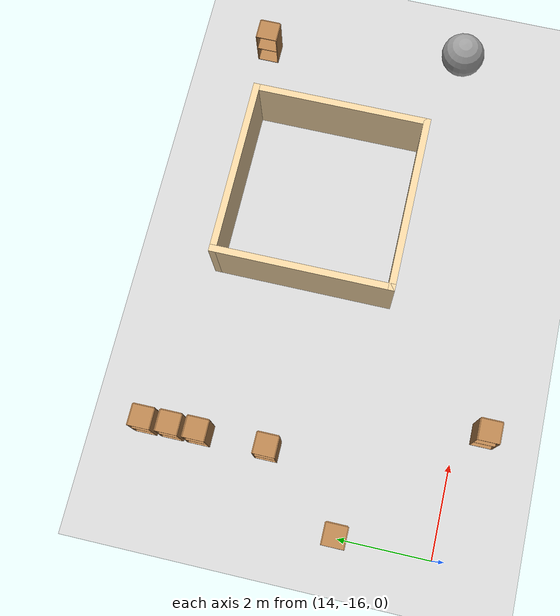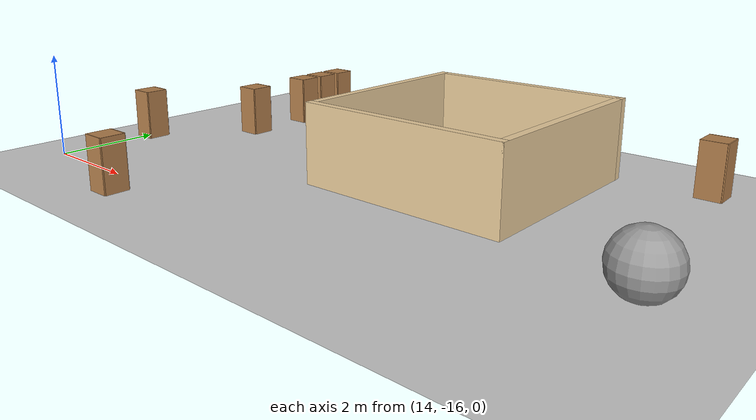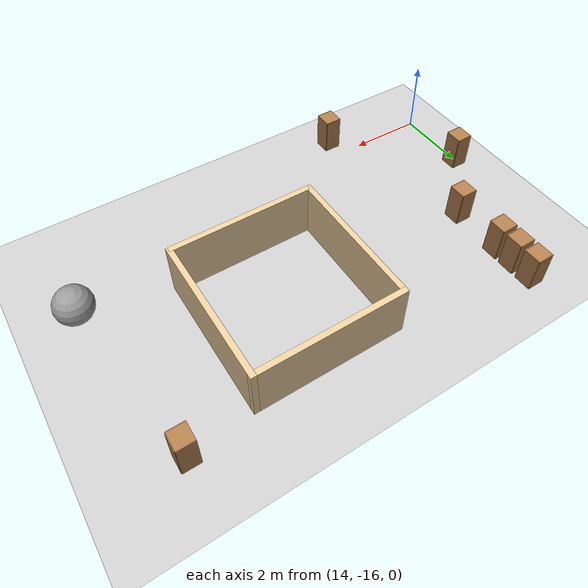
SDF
<sdf version="1.6">
 <world name="default">
  <model name="ground_plane">
   <static>1</static>
   <link name="link">
    <collision name="collision">
     <geometry><plane><normal>0 0 1</normal><size>105 105</size></plane></geometry>
     <surface>
      <contact><collide_bitmask>65535</collide_bitmask></contact>
      <friction><ode><mu>100</mu><mu2>50</mu2></ode></friction>
     </surface>
    </collision>
    <visual name="visual">
     <cast_shadows>0</cast_shadows>
     <geometry><plane><normal>0 0 1</normal><size>105 105</size></plane></geometry>
     <material>
      <script><uri>file://media/materials/scripts/gazebo.material</uri><name>Gazebo/Grey</name></script>
     </material>
    </visual>
   </link>
  </model>
  <model name="cabinet">
   <static>1</static>
   <link name="cabinet_bottom_plate">
    <inertial>
     <pose>0 0 -1 0 -0 0</pose>
     <inertia><ixx>2.05</ixx><ixy>0</ixy><ixz>0</ixz><iyy>2.05</iyy><iyz>0</iyz><izz>2.05</izz></inertia>
     <mass>25</mass>
    </inertial>
    <collision name="cabinet_bottom_plate_geom">
     <pose>0 0 0.01 0 -0 0</pose>
     <geometry><box><size>0.45 0.45 0.02</size></box></geometry>
    </collision>
    <visual name="cabinet_bottom_plate_geom_visual">
     <pose>0 0 0.01 0 -0 0</pose>
     <geometry><box><size>0.45 0.45 0.02</size></box></geometry>
     <material>
      <script><uri>file://media/materials/scripts/gazebo.material</uri><name>Gazebo/Wood</name></script>
     </material>
    </visual>
    <collision name="cabinet_bottom_plate_geom_cabinet_back_plate">
     <pose>0.235 0 0.51 0 -0 0</pose>
     <geometry><box><size>0.02 0.45 1.02</size></box></geometry>
    </collision>
    <visual name="cabinet_bottom_plate_geom_cabinet_back_plate_visual">
     <pose>0.235 0 0.51 0 -0 0</pose>
     <geometry><box><size>0.02 0.45 1.02</size></box></geometry>
     <material>
      <script><uri>file://media/materials/scripts/gazebo.material</uri><name>Gazebo/Wood</name></script>
     </material>
    </visual>
    <collision name="cabinet_bottom_plate_geom_cabinet_left_plate">
     <pose>0 0.235 0.51 0 -0 0</pose>
     <geometry><box><size>0.45 0.02 1.02</size></box></geometry>
    </collision>
    <visual name="cabinet_bottom_plate_geom_cabinet_left_plate_visual">
     <pose>0 0.235 0.51 0 -0 0</pose>
     <geometry><box><size>0.45 0.02 1.02</size></box></geometry>
     <material>
      <script><uri>file://media/materials/scripts/gazebo.material</uri><name>Gazebo/Wood</name></script>
     </material>
    </visual>
    <collision name="cabinet_bottom_plate_geom_cabinet_middle_plate">
     <pose>0 0 0.51 0 -0 0</pose>
     <geometry><box><size>0.45 0.45 0.02</size></box></geometry>
    </collision>
    <visual name="cabinet_bottom_plate_geom_cabinet_middle_plate_visual">
     <pose>0 0 0.51 0 -0 0</pose>
     <geometry><box><size>0.45 0.45 0.02</size></box></geometry>
     <material>
      <script><uri>file://media/materials/scripts/gazebo.material</uri><name>Gazebo/Wood</name></script>
     </material>
    </visual>
    <collision name="cabinet_bottom_plate_geom_cabinet_right_plate">
     <pose>0 -0.235 0.51 0 -0 0</pose>
     <geometry><box><size>0.45 0.02 1.02</size></box></geometry>
    </collision>
    <visual name="cabinet_bottom_plate_geom_cabinet_right_plate_visual">
     <pose>0 -0.235 0.51 0 -0 0</pose>
     <geometry><box><size>0.45 0.02 1.02</size></box></geometry>
     <material>
      <script><uri>file://media/materials/scripts/gazebo.material</uri><name>Gazebo/Wood</name></script>
     </material>
    </visual>
    <collision name="cabinet_bottom_plate_geom_cabinet_top_plate">
     <pose>0 0 1.01 0 -0 0</pose>
     <geometry><box><size>0.45 0.45 0.02</size></box></geometry>
    </collision>
    <visual name="cabinet_bottom_plate_geom_cabinet_top_plate_visual">
     <pose>0 0 1.01 0 -0 0</pose>
     <geometry><box><size>0.45 0.45 0.02</size></box></geometry>
     <material>
      <script><uri>file://media/materials/scripts/gazebo.material</uri><name>Gazebo/Wood</name></script>
     </material>
    </visual>
   </link>
   <pose>14.0378 -13.9277 0 0 -0 0</pose>
  </model>
  <model name="cabinet_1">
   <static>1</static>
   <link name="cabinet_bottom_plate">
    <inertial>
     <pose>0 0 -1 0 -0 0</pose>
     <inertia><ixx>2.05</ixx><ixy>0</ixy><ixz>0</ixz><iyy>2.05</iyy><iyz>0</iyz><izz>2.05</izz></inertia>
     <mass>25</mass>
    </inertial>
    <collision name="cabinet_bottom_plate_geom">
     <pose>0 0 0.01 0 -0 0</pose>
     <geometry><box><size>0.45 0.45 0.02</size></box></geometry>
    </collision>
    <visual name="cabinet_bottom_plate_geom_visual">
     <pose>0 0 0.01 0 -0 0</pose>
     <geometry><box><size>0.45 0.45 0.02</size></box></geometry>
     <material>
      <script><uri>file://media/materials/scripts/gazebo.material</uri><name>Gazebo/Wood</name></script>
     </material>
    </visual>
    <collision name="cabinet_bottom_plate_geom_cabinet_back_plate">
     <pose>0.235 0 0.51 0 -0 0</pose>
     <geometry><box><size>0.02 0.45 1.02</size></box></geometry>
    </collision>
    <visual name="cabinet_bottom_plate_geom_cabinet_back_plate_visual">
     <pose>0.235 0 0.51 0 -0 0</pose>
     <geometry><box><size>0.02 0.45 1.02</size></box></geometry>
     <material>
      <script><uri>file://media/materials/scripts/gazebo.material</uri><name>Gazebo/Wood</name></script>
     </material>
    </visual>
    <collision name="cabinet_bottom_plate_geom_cabinet_left_plate">
     <pose>0 0.235 0.51 0 -0 0</pose>
     <geometry><box><size>0.45 0.02 1.02</size></box></geometry>
    </collision>
    <visual name="cabinet_bottom_plate_geom_cabinet_left_plate_visual">
     <pose>0 0.235 0.51 0 -0 0</pose>
     <geometry><box><size>0.45 0.02 1.02</size></box></geometry>
     <material>
      <script><uri>file://media/materials/scripts/gazebo.material</uri><name>Gazebo/Wood</name></script>
     </material>
    </visual>
    <collision name="cabinet_bottom_plate_geom_cabinet_middle_plate">
     <pose>0 0 0.51 0 -0 0</pose>
     <geometry><box><size>0.45 0.45 0.02</size></box></geometry>
    </collision>
    <visual name="cabinet_bottom_plate_geom_cabinet_middle_plate_visual">
     <pose>0 0 0.51 0 -0 0</pose>
     <geometry><box><size>0.45 0.45 0.02</size></box></geometry>
     <material>
      <script><uri>file://media/materials/scripts/gazebo.material</uri><name>Gazebo/Wood</name></script>
     </material>
    </visual>
    <collision name="cabinet_bottom_plate_geom_cabinet_right_plate">
     <pose>0 -0.235 0.51 0 -0 0</pose>
     <geometry><box><size>0.45 0.02 1.02</size></box></geometry>
    </collision>
    <visual name="cabinet_bottom_plate_geom_cabinet_right_plate_visual">
     <pose>0 -0.235 0.51 0 -0 0</pose>
     <geometry><box><size>0.45 0.02 1.02</size></box></geometry>
     <material>
      <script><uri>file://media/materials/scripts/gazebo.material</uri><name>Gazebo/Wood</name></script>
     </material>
    </visual>
    <collision name="cabinet_bottom_plate_geom_cabinet_top_plate">
     <pose>0 0 1.01 0 -0 0</pose>
     <geometry><box><size>0.45 0.45 0.02</size></box></geometry>
    </collision>
    <visual name="cabinet_bottom_plate_geom_cabinet_top_plate_visual">
     <pose>0 0 1.01 0 -0 0</pose>
     <geometry><box><size>0.45 0.45 0.02</size></box></geometry>
     <material>
      <script><uri>file://media/materials/scripts/gazebo.material</uri><name>Gazebo/Wood</name></script>
     </material>
    </visual>
   </link>
   <pose>16.7504 -16.5787 0 0 -0 0</pose>
  </model>
  <model name="box4x4x1.5_1">
   <pose>21.0762 -12.0758 0 0 -0 0</pose>
   <link name="Wall_5">
    <collision name="Wall_5_Collision">
     <geometry><box><size>4 0.15 1.5</size></box></geometry>
     <pose>0 0 0.75 0 -0 0</pose>
    </collision>
    <visual name="Wall_5_Visual">
     <pose>0 0 0.75 0 -0 0</pose>
     <geometry><box><size>4 0.15 1.5</size></box></geometry>
     <material>
      <script><uri>file://media/materials/scripts/gazebo.material</uri><name>Gazebo/Grey</name></script>
      <ambient>0.921569 0.807843 0.615686 1</ambient>
     </material>
     <meta><layer>0</layer></meta>
    </visual>
    <pose>-1.925 -0 0 0 -0 -1.5708</pose>
   </link>
   <link name="Wall_6">
    <collision name="Wall_6_Collision">
     <geometry><box><size>4 0.15 1.5</size></box></geometry>
     <pose>0 0 0.75 0 -0 0</pose>
    </collision>
    <visual name="Wall_6_Visual">
     <pose>0 0 0.75 0 -0 0</pose>
     <geometry><box><size>4 0.15 1.5</size></box></geometry>
     <material>
      <script><uri>file://media/materials/scripts/gazebo.material</uri><name>Gazebo/Grey</name></script>
      <ambient>0.921569 0.807843 0.615686 1</ambient>
     </material>
     <meta><layer>0</layer></meta>
    </visual>
    <pose>0 -1.925 0 0 -0 0</pose>
   </link>
   <link name="Wall_7">
    <collision name="Wall_7_Collision">
     <geometry><box><size>4 0.15 1.5</size></box></geometry>
     <pose>0 0 0.75 0 -0 0</pose>
    </collision>
    <visual name="Wall_7_Visual">
     <pose>0 0 0.75 0 -0 0</pose>
     <geometry><box><size>4 0.15 1.5</size></box></geometry>
     <material>
      <script><uri>file://media/materials/scripts/gazebo.material</uri><name>Gazebo/Grey</name></script>
      <ambient>0.921569 0.807843 0.615686 1</ambient>
     </material>
     <meta><layer>0</layer></meta>
    </visual>
    <pose>1.925 -0 0 0 -0 1.5708</pose>
   </link>
   <link name="Wall_8">
    <collision name="Wall_8_Collision">
     <geometry><box><size>4 0.15 1.5</size></box></geometry>
     <pose>0 0 0.75 0 -0 0</pose>
    </collision>
    <visual name="Wall_8_Visual">
     <pose>0 0 0.75 0 -0 0</pose>
     <geometry><box><size>4 0.15 1.5</size></box></geometry>
     <material>
      <script><uri>file://media/materials/scripts/gazebo.material</uri><name>Gazebo/Grey</name></script>
      <ambient>0.921569 0.807843 0.615686 1</ambient>
     </material>
     <meta><layer>0</layer></meta>
    </visual>
    <pose>0 1.925 0 0 -0 3.14159</pose>
   </link>
   <static>1</static>
  </model>
  <model name="cabinet_4_clone_clone">
   <static>1</static>
   <link name="cabinet_bottom_plate">
    <inertial>
     <pose>0 0 -1 0 -0 0</pose>
     <inertia><ixx>2.05</ixx><ixy>0</ixy><ixz>0</ixz><iyy>2.05</iyy><iyz>0</iyz><izz>2.05</izz></inertia>
     <mass>25</mass>
    </inertial>
    <collision name="cabinet_bottom_plate_geom">
     <pose>0 0 0.01 0 -0 0</pose>
     <geometry><box><size>0.45 0.45 0.02</size></box></geometry>
    </collision>
    <visual name="cabinet_bottom_plate_geom_visual">
     <pose>0 0 0.01 0 -0 0</pose>
     <geometry><box><size>0.45 0.45 0.02</size></box></geometry>
     <material>
      <script><uri>file://media/materials/scripts/gazebo.material</uri><name>Gazebo/Wood</name></script>
     </material>
    </visual>
    <collision name="cabinet_bottom_plate_geom_cabinet_back_plate">
     <pose>0.235 0 0.51 0 -0 0</pose>
     <geometry><box><size>0.02 0.45 1.02</size></box></geometry>
    </collision>
    <visual name="cabinet_bottom_plate_geom_cabinet_back_plate_visual">
     <pose>0.235 0 0.51 0 -0 0</pose>
     <geometry><box><size>0.02 0.45 1.02</size></box></geometry>
     <material>
      <script><uri>file://media/materials/scripts/gazebo.material</uri><name>Gazebo/Wood</name></script>
     </material>
    </visual>
    <collision name="cabinet_bottom_plate_geom_cabinet_left_plate">
     <pose>0 0.235 0.51 0 -0 0</pose>
     <geometry><box><size>0.45 0.02 1.02</size></box></geometry>
    </collision>
    <visual name="cabinet_bottom_plate_geom_cabinet_left_plate_visual">
     <pose>0 0.235 0.51 0 -0 0</pose>
     <geometry><box><size>0.45 0.02 1.02</size></box></geometry>
     <material>
      <script><uri>file://media/materials/scripts/gazebo.material</uri><name>Gazebo/Wood</name></script>
     </material>
    </visual>
    <collision name="cabinet_bottom_plate_geom_cabinet_middle_plate">
     <pose>0 0 0.51 0 -0 0</pose>
     <geometry><box><size>0.45 0.45 0.02</size></box></geometry>
    </collision>
    <visual name="cabinet_bottom_plate_geom_cabinet_middle_plate_visual">
     <pose>0 0 0.51 0 -0 0</pose>
     <geometry><box><size>0.45 0.45 0.02</size></box></geometry>
     <material>
      <script><uri>file://media/materials/scripts/gazebo.material</uri><name>Gazebo/Wood</name></script>
     </material>
    </visual>
    <collision name="cabinet_bottom_plate_geom_cabinet_right_plate">
     <pose>0 -0.235 0.51 0 -0 0</pose>
     <geometry><box><size>0.45 0.02 1.02</size></box></geometry>
    </collision>
    <visual name="cabinet_bottom_plate_geom_cabinet_right_plate_visual">
     <pose>0 -0.235 0.51 0 -0 0</pose>
     <geometry><box><size>0.45 0.02 1.02</size></box></geometry>
     <material>
      <script><uri>file://media/materials/scripts/gazebo.material</uri><name>Gazebo/Wood</name></script>
     </material>
    </visual>
    <collision name="cabinet_bottom_plate_geom_cabinet_top_plate">
     <pose>0 0 1.01 0 -0 0</pose>
     <geometry><box><size>0.45 0.45 0.02</size></box></geometry>
    </collision>
    <visual name="cabinet_bottom_plate_geom_cabinet_top_plate_visual">
     <pose>0 0 1.01 0 -0 0</pose>
     <geometry><box><size>0.45 0.45 0.02</size></box></geometry>
     <material>
      <script><uri>file://media/materials/scripts/gazebo.material</uri><name>Gazebo/Wood</name></script>
     </material>
    </visual>
   </link>
   <pose>24.6901 -9.98824 0 0 -0 0</pose>
  </model>
  <model name="unit_sphere_clone">
   <pose>25.3655 -14.5098 0.5 0 -0 0</pose>
   <link name="link">
    <inertial>
     <mass>1</mass>
     <inertia><ixx>0.1</ixx><ixy>0</ixy><ixz>0</ixz><iyy>0.1</iyy><iyz>0</iyz><izz>0.1</izz></inertia>
    </inertial>
    <collision name="collision"><geometry><sphere><radius>0.5</radius></sphere></geometry></collision>
    <visual name="visual">
     <geometry><sphere><radius>0.5</radius></sphere></geometry>
     <material>
      <script><name>Gazebo/Grey</name><uri>file://media/materials/scripts/gazebo.material</uri></script>
     </material>
    </visual>
   </link>
  </model>
  <model name="cabinet_clone_1">
   <static>1</static>
   <link name="cabinet_bottom_plate">
    <inertial>
     <pose>0 0 -1 0 -0 0</pose>
     <inertia><ixx>2.05</ixx><ixy>0</ixy><ixz>0</ixz><iyy>2.05</iyy><iyz>0</iyz><izz>2.05</izz></inertia>
     <mass>25</mass>
    </inertial>
    <collision name="cabinet_bottom_plate_geom">
     <pose>0 0 0.01 0 -0 0</pose>
     <geometry><box><size>0.45 0.45 0.02</size></box></geometry>
    </collision>
    <visual name="cabinet_bottom_plate_geom_visual">
     <pose>0 0 0.01 0 -0 0</pose>
     <geometry><box><size>0.45 0.45 0.02</size></box></geometry>
     <material>
      <script><uri>file://media/materials/scripts/gazebo.material</uri><name>Gazebo/Wood</name></script>
     </material>
    </visual>
    <collision name="cabinet_bottom_plate_geom_cabinet_back_plate">
     <pose>0.235 0 0.51 0 -0 0</pose>
     <geometry><box><size>0.02 0.45 1.02</size></box></geometry>
    </collision>
    <visual name="cabinet_bottom_plate_geom_cabinet_back_plate_visual">
     <pose>0.235 0 0.51 0 -0 0</pose>
     <geometry><box><size>0.02 0.45 1.02</size></box></geometry>
     <material>
      <script><uri>file://media/materials/scripts/gazebo.material</uri><name>Gazebo/Wood</name></script>
     </material>
    </visual>
    <collision name="cabinet_bottom_plate_geom_cabinet_left_plate">
     <pose>0 0.235 0.51 0 -0 0</pose>
     <geometry><box><size>0.45 0.02 1.02</size></box></geometry>
    </collision>
    <visual name="cabinet_bottom_plate_geom_cabinet_left_plate_visual">
     <pose>0 0.235 0.51 0 -0 0</pose>
     <geometry><box><size>0.45 0.02 1.02</size></box></geometry>
     <material>
      <script><uri>file://media/materials/scripts/gazebo.material</uri><name>Gazebo/Wood</name></script>
     </material>
    </visual>
    <collision name="cabinet_bottom_plate_geom_cabinet_middle_plate">
     <pose>0 0 0.51 0 -0 0</pose>
     <geometry><box><size>0.45 0.45 0.02</size></box></geometry>
    </collision>
    <visual name="cabinet_bottom_plate_geom_cabinet_middle_plate_visual">
     <pose>0 0 0.51 0 -0 0</pose>
     <geometry><box><size>0.45 0.45 0.02</size></box></geometry>
     <material>
      <script><uri>file://media/materials/scripts/gazebo.material</uri><name>Gazebo/Wood</name></script>
     </material>
    </visual>
    <collision name="cabinet_bottom_plate_geom_cabinet_right_plate">
     <pose>0 -0.235 0.51 0 -0 0</pose>
     <geometry><box><size>0.45 0.02 1.02</size></box></geometry>
    </collision>
    <visual name="cabinet_bottom_plate_geom_cabinet_right_plate_visual">
     <pose>0 -0.235 0.51 0 -0 0</pose>
     <geometry><box><size>0.45 0.02 1.02</size></box></geometry>
     <material>
      <script><uri>file://media/materials/scripts/gazebo.material</uri><name>Gazebo/Wood</name></script>
     </material>
    </visual>
    <collision name="cabinet_bottom_plate_geom_cabinet_top_plate">
     <pose>0 0 1.01 0 -0 0</pose>
     <geometry><box><size>0.45 0.45 0.02</size></box></geometry>
    </collision>
    <visual name="cabinet_bottom_plate_geom_cabinet_top_plate_visual">
     <pose>0 0 1.01 0 -0 0</pose>
     <geometry><box><size>0.45 0.45 0.02</size></box></geometry>
     <material>
      <script><uri>file://media/materials/scripts/gazebo.material</uri><name>Gazebo/Wood</name></script>
     </material>
    </visual>
   </link>
   <pose>15.4569 -9.54501 0 0 -0 0</pose>
  </model>
  <model name="cabinet_clone_2">
   <static>1</static>
   <link name="cabinet_bottom_plate">
    <inertial>
     <pose>0 0 -1 0 -0 0</pose>
     <inertia><ixx>2.05</ixx><ixy>0</ixy><ixz>0</ixz><iyy>2.05</iyy><iyz>0</iyz><izz>2.05</izz></inertia>
     <mass>25</mass>
    </inertial>
    <collision name="cabinet_bottom_plate_geom">
     <pose>0 0 0.01 0 -0 0</pose>
     <geometry><box><size>0.45 0.45 0.02</size></box></geometry>
    </collision>
    <visual name="cabinet_bottom_plate_geom_visual">
     <pose>0 0 0.01 0 -0 0</pose>
     <geometry><box><size>0.45 0.45 0.02</size></box></geometry>
     <material>
      <script><uri>file://media/materials/scripts/gazebo.material</uri><name>Gazebo/Wood</name></script>
     </material>
    </visual>
    <collision name="cabinet_bottom_plate_geom_cabinet_back_plate">
     <pose>0.235 0 0.51 0 -0 0</pose>
     <geometry><box><size>0.02 0.45 1.02</size></box></geometry>
    </collision>
    <visual name="cabinet_bottom_plate_geom_cabinet_back_plate_visual">
     <pose>0.235 0 0.51 0 -0 0</pose>
     <geometry><box><size>0.02 0.45 1.02</size></box></geometry>
     <material>
      <script><uri>file://media/materials/scripts/gazebo.material</uri><name>Gazebo/Wood</name></script>
     </material>
    </visual>
    <collision name="cabinet_bottom_plate_geom_cabinet_left_plate">
     <pose>0 0.235 0.51 0 -0 0</pose>
     <geometry><box><size>0.45 0.02 1.02</size></box></geometry>
    </collision>
    <visual name="cabinet_bottom_plate_geom_cabinet_left_plate_visual">
     <pose>0 0.235 0.51 0 -0 0</pose>
     <geometry><box><size>0.45 0.02 1.02</size></box></geometry>
     <material>
      <script><uri>file://media/materials/scripts/gazebo.material</uri><name>Gazebo/Wood</name></script>
     </material>
    </visual>
    <collision name="cabinet_bottom_plate_geom_cabinet_middle_plate">
     <pose>0 0 0.51 0 -0 0</pose>
     <geometry><box><size>0.45 0.45 0.02</size></box></geometry>
    </collision>
    <visual name="cabinet_bottom_plate_geom_cabinet_middle_plate_visual">
     <pose>0 0 0.51 0 -0 0</pose>
     <geometry><box><size>0.45 0.45 0.02</size></box></geometry>
     <material>
      <script><uri>file://media/materials/scripts/gazebo.material</uri><name>Gazebo/Wood</name></script>
     </material>
    </visual>
    <collision name="cabinet_bottom_plate_geom_cabinet_right_plate">
     <pose>0 -0.235 0.51 0 -0 0</pose>
     <geometry><box><size>0.45 0.02 1.02</size></box></geometry>
    </collision>
    <visual name="cabinet_bottom_plate_geom_cabinet_right_plate_visual">
     <pose>0 -0.235 0.51 0 -0 0</pose>
     <geometry><box><size>0.45 0.02 1.02</size></box></geometry>
     <material>
      <script><uri>file://media/materials/scripts/gazebo.material</uri><name>Gazebo/Wood</name></script>
     </material>
    </visual>
    <collision name="cabinet_bottom_plate_geom_cabinet_top_plate">
     <pose>0 0 1.01 0 -0 0</pose>
     <geometry><box><size>0.45 0.45 0.02</size></box></geometry>
    </collision>
    <visual name="cabinet_bottom_plate_geom_cabinet_top_plate_visual">
     <pose>0 0 1.01 0 -0 0</pose>
     <geometry><box><size>0.45 0.45 0.02</size></box></geometry>
     <material>
      <script><uri>file://media/materials/scripts/gazebo.material</uri><name>Gazebo/Wood</name></script>
     </material>
    </visual>
   </link>
   <pose>15.4662 -10.1253 0 0 -0 0</pose>
  </model>
  <model name="cabinet_clone_3">
   <static>1</static>
   <link name="cabinet_bottom_plate">
    <inertial>
     <pose>0 0 -1 0 -0 0</pose>
     <inertia><ixx>2.05</ixx><ixy>0</ixy><ixz>0</ixz><iyy>2.05</iyy><iyz>0</iyz><izz>2.05</izz></inertia>
     <mass>25</mass>
    </inertial>
    <collision name="cabinet_bottom_plate_geom">
     <pose>0 0 0.01 0 -0 0</pose>
     <geometry><box><size>0.45 0.45 0.02</size></box></geometry>
    </collision>
    <visual name="cabinet_bottom_plate_geom_visual">
     <pose>0 0 0.01 0 -0 0</pose>
     <geometry><box><size>0.45 0.45 0.02</size></box></geometry>
     <material>
      <script><uri>file://media/materials/scripts/gazebo.material</uri><name>Gazebo/Wood</name></script>
     </material>
    </visual>
    <collision name="cabinet_bottom_plate_geom_cabinet_back_plate">
     <pose>0.235 0 0.51 0 -0 0</pose>
     <geometry><box><size>0.02 0.45 1.02</size></box></geometry>
    </collision>
    <visual name="cabinet_bottom_plate_geom_cabinet_back_plate_visual">
     <pose>0.235 0 0.51 0 -0 0</pose>
     <geometry><box><size>0.02 0.45 1.02</size></box></geometry>
     <material>
      <script><uri>file://media/materials/scripts/gazebo.material</uri><name>Gazebo/Wood</name></script>
     </material>
    </visual>
    <collision name="cabinet_bottom_plate_geom_cabinet_left_plate">
     <pose>0 0.235 0.51 0 -0 0</pose>
     <geometry><box><size>0.45 0.02 1.02</size></box></geometry>
    </collision>
    <visual name="cabinet_bottom_plate_geom_cabinet_left_plate_visual">
     <pose>0 0.235 0.51 0 -0 0</pose>
     <geometry><box><size>0.45 0.02 1.02</size></box></geometry>
     <material>
      <script><uri>file://media/materials/scripts/gazebo.material</uri><name>Gazebo/Wood</name></script>
     </material>
    </visual>
    <collision name="cabinet_bottom_plate_geom_cabinet_middle_plate">
     <pose>0 0 0.51 0 -0 0</pose>
     <geometry><box><size>0.45 0.45 0.02</size></box></geometry>
    </collision>
    <visual name="cabinet_bottom_plate_geom_cabinet_middle_plate_visual">
     <pose>0 0 0.51 0 -0 0</pose>
     <geometry><box><size>0.45 0.45 0.02</size></box></geometry>
     <material>
      <script><uri>file://media/materials/scripts/gazebo.material</uri><name>Gazebo/Wood</name></script>
     </material>
    </visual>
    <collision name="cabinet_bottom_plate_geom_cabinet_right_plate">
     <pose>0 -0.235 0.51 0 -0 0</pose>
     <geometry><box><size>0.45 0.02 1.02</size></box></geometry>
    </collision>
    <visual name="cabinet_bottom_plate_geom_cabinet_right_plate_visual">
     <pose>0 -0.235 0.51 0 -0 0</pose>
     <geometry><box><size>0.45 0.02 1.02</size></box></geometry>
     <material>
      <script><uri>file://media/materials/scripts/gazebo.material</uri><name>Gazebo/Wood</name></script>
     </material>
    </visual>
    <collision name="cabinet_bottom_plate_geom_cabinet_top_plate">
     <pose>0 0 1.01 0 -0 0</pose>
     <geometry><box><size>0.45 0.45 0.02</size></box></geometry>
    </collision>
    <visual name="cabinet_bottom_plate_geom_cabinet_top_plate_visual">
     <pose>0 0 1.01 0 -0 0</pose>
     <geometry><box><size>0.45 0.45 0.02</size></box></geometry>
     <material>
      <script><uri>file://media/materials/scripts/gazebo.material</uri><name>Gazebo/Wood</name></script>
     </material>
    </visual>
   </link>
   <pose>15.47 -10.7004 0 0 -0 0</pose>
  </model>
  <model name="cabinet_clone_4">
   <static>1</static>
   <link name="cabinet_bottom_plate">
    <inertial>
     <pose>0 0 -1 0 -0 0</pose>
     <inertia><ixx>2.05</ixx><ixy>0</ixy><ixz>0</ixz><iyy>2.05</iyy><iyz>0</iyz><izz>2.05</izz></inertia>
     <mass>25</mass>
    </inertial>
    <collision name="cabinet_bottom_plate_geom">
     <pose>0 0 0.01 0 -0 0</pose>
     <geometry><box><size>0.45 0.45 0.02</size></box></geometry>
    </collision>
    <visual name="cabinet_bottom_plate_geom_visual">
     <pose>0 0 0.01 0 -0 0</pose>
     <geometry><box><size>0.45 0.45 0.02</size></box></geometry>
     <material>
      <script><uri>file://media/materials/scripts/gazebo.material</uri><name>Gazebo/Wood</name></script>
     </material>
    </visual>
    <collision name="cabinet_bottom_plate_geom_cabinet_back_plate">
     <pose>0.235 0 0.51 0 -0 0</pose>
     <geometry><box><size>0.02 0.45 1.02</size></box></geometry>
    </collision>
    <visual name="cabinet_bottom_plate_geom_cabinet_back_plate_visual">
     <pose>0.235 0 0.51 0 -0 0</pose>
     <geometry><box><size>0.02 0.45 1.02</size></box></geometry>
     <material>
      <script><uri>file://media/materials/scripts/gazebo.material</uri><name>Gazebo/Wood</name></script>
     </material>
    </visual>
    <collision name="cabinet_bottom_plate_geom_cabinet_left_plate">
     <pose>0 0.235 0.51 0 -0 0</pose>
     <geometry><box><size>0.45 0.02 1.02</size></box></geometry>
    </collision>
    <visual name="cabinet_bottom_plate_geom_cabinet_left_plate_visual">
     <pose>0 0.235 0.51 0 -0 0</pose>
     <geometry><box><size>0.45 0.02 1.02</size></box></geometry>
     <material>
      <script><uri>file://media/materials/scripts/gazebo.material</uri><name>Gazebo/Wood</name></script>
     </material>
    </visual>
    <collision name="cabinet_bottom_plate_geom_cabinet_middle_plate">
     <pose>0 0 0.51 0 -0 0</pose>
     <geometry><box><size>0.45 0.45 0.02</size></box></geometry>
    </collision>
    <visual name="cabinet_bottom_plate_geom_cabinet_middle_plate_visual">
     <pose>0 0 0.51 0 -0 0</pose>
     <geometry><box><size>0.45 0.45 0.02</size></box></geometry>
     <material>
      <script><uri>file://media/materials/scripts/gazebo.material</uri><name>Gazebo/Wood</name></script>
     </material>
    </visual>
    <collision name="cabinet_bottom_plate_geom_cabinet_right_plate">
     <pose>0 -0.235 0.51 0 -0 0</pose>
     <geometry><box><size>0.45 0.02 1.02</size></box></geometry>
    </collision>
    <visual name="cabinet_bottom_plate_geom_cabinet_right_plate_visual">
     <pose>0 -0.235 0.51 0 -0 0</pose>
     <geometry><box><size>0.45 0.02 1.02</size></box></geometry>
     <material>
      <script><uri>file://media/materials/scripts/gazebo.material</uri><name>Gazebo/Wood</name></script>
     </material>
    </visual>
    <collision name="cabinet_bottom_plate_geom_cabinet_top_plate">
     <pose>0 0 1.01 0 -0 0</pose>
     <geometry><box><size>0.45 0.45 0.02</size></box></geometry>
    </collision>
    <visual name="cabinet_bottom_plate_geom_cabinet_top_plate_visual">
     <pose>0 0 1.01 0 -0 0</pose>
     <geometry><box><size>0.45 0.45 0.02</size></box></geometry>
     <material>
      <script><uri>file://media/materials/scripts/gazebo.material</uri><name>Gazebo/Wood</name></script>
     </material>
    </visual>
   </link>
   <pose>15.4669 -12.1752 0 0 -0 0</pose>
  </model>
 </world>
</sdf>
